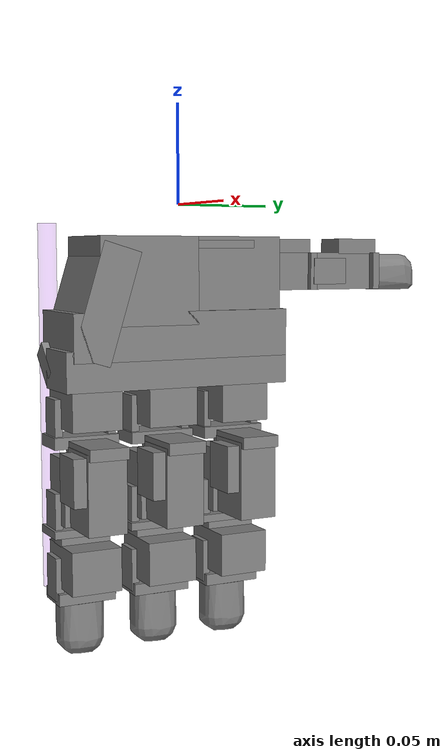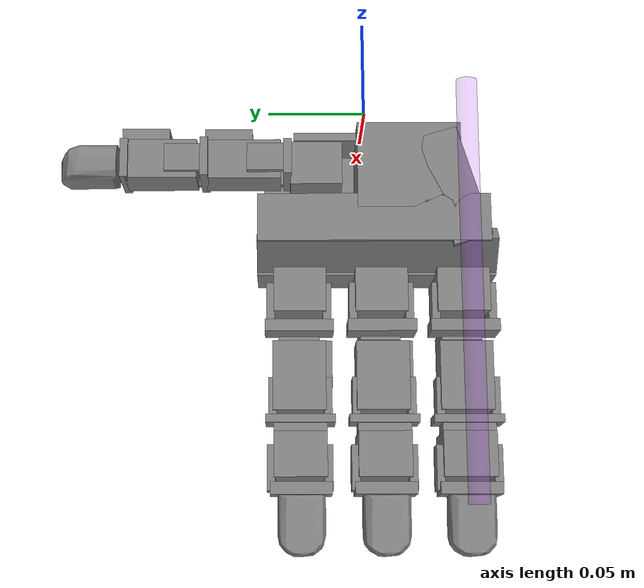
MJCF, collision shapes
<?xml version='1.0' encoding='utf-8'?>
<mujoco model="leap_rh">

  <asset>
    <material name="black" rgba="0.2 0.2 0.2 1" />

    <mesh name="palm" file="meshes/leap_hand/palm_right.stl" scale="0.95 0.95 0.95" />
    <mesh name="base" file="meshes/leap_hand/base.stl" scale="0.95 0.95 0.95" />
    <mesh name="proximal" file="meshes/leap_hand/proximal.stl" scale="0.95 0.95 0.95" />
    <mesh name="medial" file="meshes/leap_hand/medial.stl" scale="0.95 0.95 0.95" />
    <mesh name="distal" file="meshes/leap_hand/distal.stl" scale="0.95 0.95 0.95" />
    <mesh name="tip" file="meshes/leap_hand/tip.stl" scale="0.95 0.95 0.95" />
    <mesh name="thumb_base" file="meshes/leap_hand/thumb_base.stl" scale="0.95 0.95 0.95" />
    <mesh name="thumb_proximal" file="meshes/leap_hand/thumb_proximal.stl" scale="0.95 0.95 0.95" />
    <mesh name="thumb_distal" file="meshes/leap_hand/thumb_distal.stl" scale="0.95 0.95 0.95" />
    <mesh name="thumb_tip" file="meshes/leap_hand/thumb_tip.stl" scale="0.95 0.95 0.95" />
  </asset>

  <default>

   <geom solimp="0.9 0.95 0.001" solref="0.005 1" friction="0.8" />

    <position kp="3.0" />
    <joint damping="1.0" frictionloss="0.1" />

    <default class="visual">
      <geom group="1" type="mesh" contype="0" conaffinity="0" density="0" material="black" />
    </default>
    <default class="tip">
      <geom type="mesh" mesh="tip" friction="0.5" />
    </default>
    <default class="thumb_tip">
      <geom type="mesh" mesh="thumb_tip" friction="0.5" />
    </default>

    <default class="mcp">
      <joint pos="0.000000 0.000000 0.000000" axis="0 0 -1" limited="true" range="-0.314 2.23" damping="0.1" />
      <position ctrlrange="-0.314 2.23" />
    </default>
    <default class="rot">
      <joint pos="0.000000 0.000000 0.000000" axis="0 0 -1" limited="true" range="-1.047 1.047" damping="0.1" />
      <position ctrlrange="-1.047 1.047" />
    </default>
    <default class="pip">
      <joint pos="0.000000 0.000000 0.000000" axis="0 0 -1" limited="true" range="-0.506 1.885" damping="0.1" />
      <position ctrlrange="-0.506 1.885" />
    </default>
    <default class="dip">
      <joint pos="0.000000 0.000000 0.000000" axis="0 0 -1" limited="true" range="-0.366 2.042" damping="0.1" />
      <position ctrlrange="-0.366 2.042" />
    </default>
    <default class="thumb_cmc">
      <joint pos="0.000000 0.000000 0.000000" axis="0 0 -1" limited="true" range="-0.349 2.094" damping="0.1" />
      <position ctrlrange="-0.349 2.094" />
    </default>
    <default class="thumb_axl">
      <joint pos="0.000000 0.000000 0.000000" axis="0 0 -1" limited="true" range="-0.349 2.094" damping="0.1" />
      <position ctrlrange="-0.349 2.094" />
    </default>
    <default class="thumb_mcp">
      <joint pos="0.000000 0.000000 0.000000" axis="0 0 -1" limited="true" range="-0.47 2.443" damping="0.1" />
      <position ctrlrange="-0.47 2.443" />
    </default>
    <default class="thumb_ipl">
      <joint pos="0.000000 0.000000 0.000000" axis="0 0 -1" limited="true" range="-1.34 1.88" damping="0.1" />
      <position ctrlrange="-1.34 1.88" />
    </default>
  </default>

  <contact>

    <exclude body1="palm" body2="if_bs" />
    <exclude body1="palm" body2="mf_bs" />
    <exclude body1="palm" body2="rf_bs" />
    <exclude body1="palm" body2="th_mp" />

    <exclude body1="palm" body2="if_px" />
    <exclude body1="palm" body2="mf_px" />
    <exclude body1="palm" body2="rf_px" />
    <exclude body1="palm" body2="th_bs" />

    <exclude body1="palm" body2="if_md" />
    <exclude body1="palm" body2="mf_md" />
    <exclude body1="palm" body2="rf_md" />
    <exclude body1="palm" body2="th_px" />

    <exclude body1="if_bs" body2="mf_bs" />
    <exclude body1="if_bs" body2="rf_bs" />
    <exclude body1="mf_bs" body2="rf_bs" />

    <exclude body1="th_mp" body2="if_bs" />
    <exclude body1="th_mp" body2="mf_bs" />
    <exclude body1="th_mp" body2="rf_bs" />

  </contact>

  <actuator>

    <position name="if_mcp_act" joint="if_mcp" class="mcp" />
    <position name="if_rot_act" joint="if_rot" class="rot" />
    <position name="if_pip_act" joint="if_pip" class="pip" />
    <position name="if_dip_act" joint="if_dip" class="dip" />

    <position name="mf_mcp_act" joint="mf_mcp" class="mcp" />
    <position name="mf_rot_act" joint="mf_rot" class="rot" />
    <position name="mf_pip_act" joint="mf_pip" class="pip" />
    <position name="mf_dip_act" joint="mf_dip" class="dip" />

    <position name="rf_mcp_act" joint="rf_mcp" class="mcp" />
    <position name="rf_rot_act" joint="rf_rot" class="rot" />
    <position name="rf_pip_act" joint="rf_pip" class="pip" />
    <position name="rf_dip_act" joint="rf_dip" class="dip" />

    <position name="th_cmc_act" joint="th_cmc" class="thumb_cmc" />
    <position name="th_axl_act" joint="th_axl" class="thumb_axl" />
    <position name="th_mcp_act" joint="th_mcp" class="thumb_mcp" />
    <position name="th_ipl_act" joint="th_ipl" class="thumb_ipl" />
  </actuator>

  <sensor>
    <force name="force_ee" site="ft_frame" />
    <torque name="torque_ee" site="ft_frame" />

    <jointpos name="if_mcp_sensor" joint="if_mcp" />
    <jointpos name="if_rot_sensor" joint="if_rot" />
    <jointpos name="if_pip_sensor" joint="if_pip" />
    <jointpos name="if_dip_sensor" joint="if_dip" />

    <jointpos name="mf_mcp_sensor" joint="mf_mcp" />
    <jointpos name="mf_rot_sensor" joint="mf_rot" />
    <jointpos name="mf_pip_sensor" joint="mf_pip" />
    <jointpos name="mf_dip_sensor" joint="mf_dip" />

    <jointpos name="rf_mcp_sensor" joint="rf_mcp" />
    <jointpos name="rf_rot_sensor" joint="rf_rot" />
    <jointpos name="rf_pip_sensor" joint="rf_pip" />
    <jointpos name="rf_dip_sensor" joint="rf_dip" />

    <jointpos name="th_cmc_sensor" joint="th_cmc" />
    <jointpos name="th_axl_sensor" joint="th_axl" />
    <jointpos name="th_mcp_sensor" joint="th_mcp" />
    <jointpos name="th_ipl_sensor" joint="th_ipl" />
  </sensor>

  <worldbody>
    <body name="palm" pos="0.000000 0.027075 -0.108300" quat="0.7071068 0 0.7071068 0">

      <site name="ft_frame" pos="0.000000 -0.054150 0.000000" size="0.01 0.01 0.01" rgba="1 0 0 0" type="sphere" group="1" />
      <site name="grip_site" pos="0.000000 -0.072200 0.000000" size="0.01 0.01 0.01" rgba="1 0 0 0" type="sphere" group="1" />
      <site name="grip_site_cylinder" pos="0.000000 -0.072200 -0.072200" quat="0.707107 0 0.707107 0" size="0.005 .1" rgba=".627 .125 .941 .2" type="cylinder" group="1" />
      <inertial pos="-0.049542 -0.042914 -0.010227" quat="0.565586 0.427629 -0.574956 0.408254" mass="0.237" diaginertia="0.000407345 0.000304759 0.000180736" />
      <geom name="palm_visual" pos="-0.018050 0.023239 -0.031317" quat="1 0 0 0" class="visual" mesh="palm" />
      <geom name="palm_collision_1" size="0.011 0.013 0.017" pos="-0.008122 0.007220 -0.009927" type="box" />
      <geom name="palm_collision_2" size="0.011 0.013 0.017" pos="-0.008122 -0.033392 -0.009927" type="box" />
      <geom name="palm_collision_3" size="0.011 0.013 0.017" pos="-0.008122 -0.074005 -0.009927" type="box" />
      <geom name="palm_collision_4" size="0.029 0.01 0.023" pos="-0.059565 -0.070395 -0.010379" quat="0.989016 0 0 -0.147806" type="box" />
      <geom name="palm_collision_5" size="0.01 0.06 0.015" pos="-0.027075 -0.031587 -0.002707" type="box" />
      <geom name="palm_collision_6" size="0.005 0.06 0.01" pos="-0.028880 -0.031587 -0.021660" quat="0.923956 0 0.382499 0" type="box" />
      <geom name="palm_collision_7" size="0.012 0.058 0.023" pos="-0.043320 -0.029782 -0.010379" type="box" />
      <geom name="palm_collision_8" size="0.022 0.026 0.023" pos="-0.070395 -0.047833 -0.010379" type="box" />
      <geom name="palm_collision_9" size="0.002 0.018 0.017" pos="-0.088445 -0.008122 -0.005415" type="box" />
      <geom name="palm_collision_10" size="0.022 0.028 0.002" pos="-0.070395 -0.002707 0.009025" type="box" />

      <body name="if_bs" pos="-0.006317 0.020758 -0.016877" quat="0.500003 0.5 0.5 -0.499997">
        <inertial pos="-0.022516 0.033882 0.016359" quat="0.388092 0.677951 -0.247713 0.573067" mass="0.044" diaginertia="1.74972e-05 1.61504e-05 7.21342e-06" />
        <joint name="if_mcp" class="mcp" />
        <geom name="if_bs_visual" pos="0.007581 0.006949 0.013221" quat="1 0 0 0" class="visual" mesh="base" />
        <geom name="if_bs_collision_1" size="0.01 0.003 0.017" pos="0.000000 0.016245 0.013267" type="box" />
        <geom name="if_bs_collision_2" size="0.014 0.02 0.01" pos="-0.024367 0.037905 0.013537" type="box" />
        <geom name="if_bs_collision_3" size="0.017 0.003 0.01" pos="-0.023645 0.018050 0.013176" type="box" />
        <geom name="if_bs_collision_4" size="0.01 0.012 0.004" pos="-0.026624 0.031587 0.026173" type="box" />
        <geom name="if_bs_collision_5" size="0.007 0.01 0.002" pos="0.000000 0.004513 0.027075" type="box" />
        <geom name="if_bs_collision_6" size="0.007 0.01 0.002" pos="0.000000 0.004513 -0.000902" type="box" />

        <body name="if_px" pos="-0.011010 0.034385 0.013086" quat="0.500003 -0.5 -0.499997 0.5">
          <inertial pos="0.0075 -0.0002 -0.011" quat="0 0.707107 0 0.707107" mass="0.032" diaginertia="4.8853e-06 4.3733e-06 3.0933e-06" />
          <joint name="if_rot" class="rot" />
          <geom name="if_px_visual" pos="0.008664 0.000180 0.000632" quat="0.500003 -0.5 -0.5 -0.499997" class="visual" mesh="proximal" />
          <geom name="if_px_collision" size="0.017 0.013 0.011" pos="0.006769 -0.000180 -0.009927" type="box" />

          <body name="if_md" pos="0.013537 0.012906 -0.011732" quat="0.500003 0.5 -0.5 0.499997">
            <inertial pos="0.0054215 -0.029148 0.015" quat="0.687228 0.687228 0.166487 0.166487" mass="0.037" diaginertia="8.28004e-06 8.1598e-06 5.39516e-06" />
            <joint name="if_pip" class="pip" />
            <geom name="if_md_visual" pos="0.019043 -0.007581 0.008754" quat="2.67949e-08 -1 0 0" class="visual" mesh="medial" />
            <geom name="if_md_collision_1" size="0.008 0.003 0.013" pos="0.000000 -0.018050 0.013537" type="box" />
            <geom name="if_md_collision_2" size="0.01 0.002 0.017" pos="0.000000 -0.014440 0.013537" type="box" />
            <geom name="if_md_collision_3" size="0.007 0.01 0.002" pos="0.000000 -0.004061 0.027075" type="box" />
            <geom name="if_md_collision_4" size="0.007 0.01 0.002" pos="0.000000 -0.004061 0.000000" type="box" />
            <geom name="if_md_collision_5" size="0.017 0.011 0.013" pos="0.006769 -0.031587 0.013537" type="box" />

            <body name="if_ds" pos="0.000000 -0.032580 0.000180">
              <inertial pos="-0.0008794 -0.027019 0.014594" quat="0.702905 0.710643 -0.0212937 -0.0214203" mass="0.016" diaginertia="3.71863e-06 3.02396e-06 1.6518e-06" />
              <joint name="if_dip" class="dip" />
              <geom name="if_ds_visual" pos="0.011913 -0.005505 0.012996" quat="2.67949e-08 1 0 0" class="visual" mesh="distal" />
              <geom name="if_ds_collision_1" size="0.01 0.003 0.015" pos="0.000000 -0.015343 0.013537" type="box" />
              <geom name="if_ds_collision_2" size="0.007 0.011 0.002" pos="0.000000 -0.005415 0.027075" type="box" />
              <geom name="if_ds_collision_3" size="0.007 0.011 0.002" pos="0.000000 -0.005415 -0.000902" type="box" />

              <geom name="if_tip" class="tip" />
            </body>

          </body>
        </body>
      </body>

      <body name="mf_bs" pos="-0.006408 -0.020216 -0.016877" quat="0.500003 0.5 0.5 -0.499997">
        <inertial pos="-0.022516 0.033882 0.016359" quat="0.388092 0.677951 -0.247713 0.573067" mass="0.044" diaginertia="1.74972e-05 1.61504e-05 7.21342e-06" />
        <joint name="mf_mcp" class="mcp" />
        <geom name="mf_bs_visual" pos="0.007581 0.006949 0.013221" quat="1 0 0 0" class="visual" mesh="base" />
        <geom name="mf_bs_collision_1" size="0.01 0.003 0.017" pos="0.000000 0.016245 0.013267" type="box" />
        <geom name="mf_bs_collision_2" size="0.014 0.02 0.01" pos="-0.024367 0.037905 0.013537" type="box" />
        <geom name="mf_bs_collision_3" size="0.017 0.003 0.01" pos="-0.023645 0.018050 0.013176" type="box" />
        <geom name="mf_bs_collision_4" size="0.01 0.012 0.004" pos="-0.026624 0.031587 0.026173" type="box" />
        <geom name="mf_bs_collision_5" size="0.007 0.01 0.002" pos="0.000000 0.004513 0.027075" type="box" />
        <geom name="mf_bs_collision_6" size="0.007 0.01 0.002" pos="0.000000 0.004513 -0.000902" type="box" />

        <body name="mf_px" pos="-0.011010 0.034385 0.013086" quat="0.500003 -0.5 -0.499997 0.5">
          <inertial pos="0.0075 -0.0002 -0.011" quat="0 0.707107 0 0.707107" mass="0.032" diaginertia="4.8853e-06 4.3733e-06 3.0933e-06" />
          <joint name="mf_rot" class="rot" />
          <geom name="mf_px_visual" pos="0.008664 0.000271 0.000632" quat="0.500003 -0.5 -0.5 -0.499997" class="visual" mesh="proximal" />
          <geom name="mf_px_collision" size="0.017 0.013 0.011" pos="0.006769 -0.000180 -0.009927" type="box" />

          <body name="mf_md" pos="0.013537 0.012906 -0.011732" quat="0.500003 0.5 -0.5 0.499997">
            <inertial pos="0.0054215 -0.029148 0.015" quat="0.687228 0.687228 0.166487 0.166487" mass="0.037" diaginertia="8.28004e-06 8.1598e-06 5.39516e-06" />
            <joint name="mf_pip" class="pip" />
            <geom name="mf_md_visual" pos="0.019043 -0.007581 0.008754" quat="1.32679e-06 -1 0 0" class="visual" mesh="medial" />
            <geom name="mf_md_collision_1" size="0.008 0.003 0.013" pos="0.000000 -0.018050 0.013537" type="box" />
            <geom name="mf_md_collision_2" size="0.01 0.002 0.017" pos="0.000000 -0.014440 0.013537" type="box" />
            <geom name="mf_md_collision_3" size="0.007 0.01 0.002" pos="0.000000 -0.004061 0.027075" type="box" />
            <geom name="mf_md_collision_4" size="0.007 0.01 0.002" pos="0.000000 -0.004061 0.000000" type="box" />
            <geom name="mf_md_collision_5" size="0.017 0.011 0.013" pos="0.006769 -0.031587 0.013537" type="box" />

            <body name="mf_ds" pos="0.000000 -0.032580 0.000180">
              <inertial pos="-0.0008794 -0.027019 0.014594" quat="0.702905 0.710643 -0.0212937 -0.0214203" mass="0.016" diaginertia="3.71863e-06 3.02396e-06 1.6518e-06" />
              <joint name="mf_dip" class="dip" />
              <geom name="mf_ds_visual" pos="0.011913 -0.005505 0.013086" quat="1.32679e-06 1 0 0" class="visual" mesh="distal" />
              <geom name="mf_ds_collision_1" size="0.01 0.003 0.015" pos="0.000000 -0.015343 0.013537" type="box" />
              <geom name="mf_ds_collision_2" size="0.007 0.011 0.002" pos="0.000000 -0.005415 0.027075" type="box" />
              <geom name="mf_ds_collision_3" size="0.007 0.011 0.002" pos="0.000000 -0.005415 -0.000902" type="box" />

              <geom name="mf_tip" class="tip" />
            </body>

          </body>
        </body>
      </body>

      <body name="rf_bs" pos="-0.006398 -0.061189 -0.016877" quat="0.500003 0.5 0.5 -0.499997">
        <inertial pos="-0.022516 0.033882 0.016359" quat="0.388092 0.677951 -0.247713 0.573067" mass="0.044" diaginertia="1.74972e-05 1.61504e-05 7.21342e-06" />
        <joint name="rf_mcp" class="mcp" />
        <geom name="rf_bs_visual" pos="0.007581 0.006949 0.013221" quat="1 0 0 0" class="visual" mesh="base" />
        <geom name="rf_bs_collision_1" size="0.01 0.003 0.017" pos="0.000000 0.016245 0.013267" type="box" />
        <geom name="rf_bs_collision_2" size="0.014 0.02 0.01" pos="-0.024367 0.037905 0.013537" type="box" />
        <geom name="rf_bs_collision_3" size="0.017 0.003 0.01" pos="-0.023645 0.018050 0.013176" type="box" />
        <geom name="rf_bs_collision_4" size="0.01 0.012 0.004" pos="-0.026624 0.031587 0.026173" type="box" />
        <geom name="rf_bs_collision_5" size="0.007 0.01 0.002" pos="0.000000 0.004513 0.027075" type="box" />
        <geom name="rf_bs_collision_6" size="0.007 0.01 0.002" pos="0.000000 0.004513 -0.000902" type="box" />

        <body name="rf_px" pos="-0.011010 0.034385 0.013086" quat="0.500003 -0.5 -0.499997 0.5">
          <inertial pos="0.0075 -0.0002 -0.011" quat="0 0.707107 0 0.707107" mass="0.032" diaginertia="4.8853e-06 4.3733e-06 3.0933e-06" />
          <joint name="rf_rot" class="rot" />
          <geom name="rf_px_visual" pos="0.008664 0.000271 0.000632" quat="0.500003 -0.5 -0.5 -0.499997" class="visual" mesh="proximal" />
          <geom name="rf_px_collision" size="0.017 0.013 0.011" pos="0.006769 -0.000180 -0.009927" type="box" />

          <body name="rf_md" pos="0.013537 0.012906 -0.011732" quat="0.500003 0.5 -0.5 0.499997">
            <inertial pos="0.0054215 -0.029148 0.015" quat="0.687228 0.687228 0.166487 0.166487" mass="0.037" diaginertia="8.28004e-06 8.1598e-06 5.39516e-06" />
            <joint name="rf_pip" class="pip" />
            <geom name="rf_md_visual" pos="0.019043 -0.007581 0.008754" quat="1.32679e-06 -1 0 0" class="visual" mesh="medial" />
            <geom name="rf_md_collision_1" size="0.008 0.003 0.013" pos="0.000000 -0.018050 0.013537" type="box" />
            <geom name="rf_md_collision_2" size="0.01 0.002 0.017" pos="0.000000 -0.014440 0.013537" type="box" />
            <geom name="rf_md_collision_3" size="0.007 0.01 0.002" pos="0.000000 -0.004061 0.027075" type="box" />
            <geom name="rf_md_collision_4" size="0.007 0.01 0.002" pos="0.000000 -0.004061 0.000000" type="box" />
            <geom name="rf_md_collision_5" size="0.017 0.011 0.013" pos="0.006769 -0.031587 0.013537" type="box" />

            <body name="rf_ds" pos="0.000000 -0.032571 0.000180">
              <inertial pos="-0.0008794 -0.027019 0.014594" quat="0.702905 0.710643 -0.0212937 -0.0214203" mass="0.016" diaginertia="3.71863e-06 3.02396e-06 1.6518e-06" />
              <joint name="rf_dip" class="dip" />
              <geom name="rf_ds_visual" pos="0.011913 -0.005505 0.013086" quat="1.32679e-06 1 0 0" class="visual" mesh="distal" />
              <geom name="rf_ds_collision_1" size="0.01 0.003 0.015" pos="0.000000 -0.015343 0.013537" type="box" />
              <geom name="rf_ds_collision_2" size="0.007 0.011 0.002" pos="0.000000 -0.005415 0.027075" type="box" />
              <geom name="rf_ds_collision_3" size="0.007 0.011 0.002" pos="0.000000 -0.005415 -0.000902" type="box" />

              <geom name="rf_tip" class="tip" />
            </body>

          </body>
        </body>
      </body>

      <body name="th_mp" pos="-0.062543 -0.001083 -0.019494" quat="0.707109 0 0.707105 0">
        <inertial pos="0.0075 -0.0002 -0.011" quat="0 0.707107 0 0.707107" mass="0.032" diaginertia="4.8853e-06 4.3733e-06 3.0933e-06" />
        <joint name="th_cmc" class="thumb_cmc" />
        <geom name="th_mp_visual" pos="-0.004783 0.000271 0.000704" quat="0.500003 -0.5 -0.5 -0.499997" class="visual" mesh="proximal" />
        <geom name="th_mp_collision" size="0.017 0.013 0.011" pos="-0.006769 -0.000180 -0.009927" type="box" />

        <body name="th_bs" pos="0.000000 0.012906 -0.011732" quat="0.500003 0.5 -0.5 0.499997">
          <inertial pos="0 0 -0.0070806" quat="0.707107 0.707107 0 0" mass="0.003" diaginertia="6.1932e-07 5.351e-07 2.1516e-07" />
          <joint name="th_axl" class="thumb_axl" />
          <geom name="th_bs_visual" pos="0.010794 0.000000 -0.014259" quat="0.707109 0.707105 0 0" class="visual" mesh="thumb_base" />
          <geom name="th_bs_collision_1" size="0.009 0.0165 0.002" pos="0.000000 0.000000 -0.001354" type="box" />
          <geom name="th_bs_collision_2" size="0.007 0.002 0.01" pos="0.000000 -0.013537 -0.011732" type="box" />
          <geom name="th_bs_collision_3" size="0.007 0.002 0.01" pos="0.000000 0.013537 -0.011732" type="box" />

          <body name="th_px" pos="0.000000 0.013086 -0.015343" quat="0.707109 -0.707105 0 0">
            <inertial pos="-0.0020593 0.015912 -0.013733" quat="0.698518 0.697382 -0.104933 0.121324" mass="0.038" diaginertia="9.87104e-06 9.32653e-06 4.36203e-06" />
            <joint name="th_mcp" class="thumb_mcp" />
            <geom name="th_px_visual" pos="0.039620 0.052255 -0.007762" quat="1 0 0 0" class="visual" mesh="thumb_proximal" />
            <geom name="th_px_collision_1" size="0.01 0.02 0.012" pos="0.000000 0.009476 -0.012635" type="box" />
            <geom name="th_px_collision_2" size="0.01 0.002 0.016" pos="0.000000 0.027977 -0.013537" type="box" />
            <geom name="th_px_collision_3" size="0.007 0.01 0.002" pos="0.000000 0.037905 0.000902" type="box" />
            <geom name="th_px_collision_4" size="0.007 0.01 0.002" pos="0.000000 0.037905 -0.026173" type="box" />
            <geom name="th_px_collision_5" size="0.005 0.012 0.009" pos="-0.012184 0.015794 -0.010519" type="box" />

            <body name="th_ds" pos="0.000000 0.042056 0.000180" quat="1.32679e-06 0 0 1">
              <inertial pos="0.00096191 -0.024203 -0.014419" quat="0.35287 0.311272 -0.632839 0.614904" mass="0.049" diaginertia="2.08591e-05 2.0402e-05 4.71335e-06" />
              <joint name="th_ipl" class="thumb_ipl" />
              <geom name="th_ds_visual" pos="0.056406 0.070756 0.044132" quat="1 0 0 0" class="visual" mesh="thumb_distal" />
              <geom name="th_ds_collision_1" size="0.01 0.018 0.012" pos="0.000000 -0.007671 -0.013537" type="box" />
              <geom name="th_ds_collision_2" size="0.01 0.002 0.015" pos="0.000000 -0.026173 -0.012635" type="box" />
              <geom name="th_ds_collision_3" size="0.004 0.012 0.009" pos="0.013537 -0.015794 -0.010379" type="box" />

              <geom name="th_tip" class="thumb_tip" />
            </body>

          </body>
        </body>
      </body>

    </body>
  </worldbody>
</mujoco>
